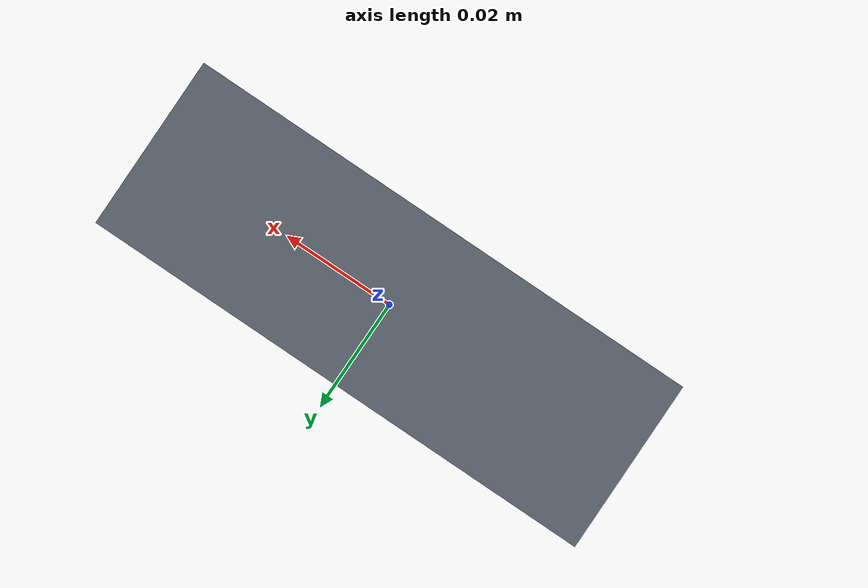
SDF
<?xml version='1.0' encoding='utf-8'?>
<sdf version="1.6">
  <model name="workspace_camera">
    <static>true</static>
    <pose>0 0 0 0 0 0</pose>
    <link name="workspace_camera_link">
      <collision name="camera_body_collision">
        <geometry>
          <box>
            <size>0.09 0.03 0.03</size>
          </box>
        </geometry>
      </collision>
      <visual name="camera_body_visual">
        <geometry>
          <box>
            <size>0.09 0.03 0.03</size>
          </box>
        </geometry>
        <material>
          <ambient>0.20 0.22 0.25 1</ambient>
          <diffuse>0.35 0.38 0.42 1</diffuse>
        </material>
      </visual>
      <sensor type="depth" name="workspace_camera_rgbd">
        <pose>0.045 0 0 0 0 0</pose>
        <always_on>true</always_on>
        <visualize>false</visualize>
        <update_rate>20</update_rate>
        <camera name="workspace_camera_sensor">
          <horizontal_fov>1.0471975512</horizontal_fov>
          <image>
            <width>640</width>
            <height>480</height>
            <format>R8G8B8</format>
          </image>
          <clip>
            <near>0.15</near>
            <far>3.0</far>
          </clip>
        </camera>
        <plugin name="workspace_camera_gazebo_ros_openni" filename="libgazebo_ros_openni_kinect.so">
          <cameraName>workspace_camera</cameraName>
          <imageTopicName>color/image_raw</imageTopicName>
          <cameraInfoTopicName>color/camera_info</cameraInfoTopicName>
          <depthImageTopicName>aligned_depth_to_color/image_raw</depthImageTopicName>
          <depthImageCameraInfoTopicName>aligned_depth_to_color/camera_info</depthImageCameraInfoTopicName>
          <pointCloudTopicName>depth/color/points</pointCloudTopicName>
          <frameName>workspace_camera_color_optical_frame</frameName>
          <pointCloudCutoff>0.15</pointCloudCutoff>
          <pointCloudCutoffMax>3.0</pointCloudCutoffMax>
        </plugin>
      </sensor>
    </link>
  </model>
</sdf>
